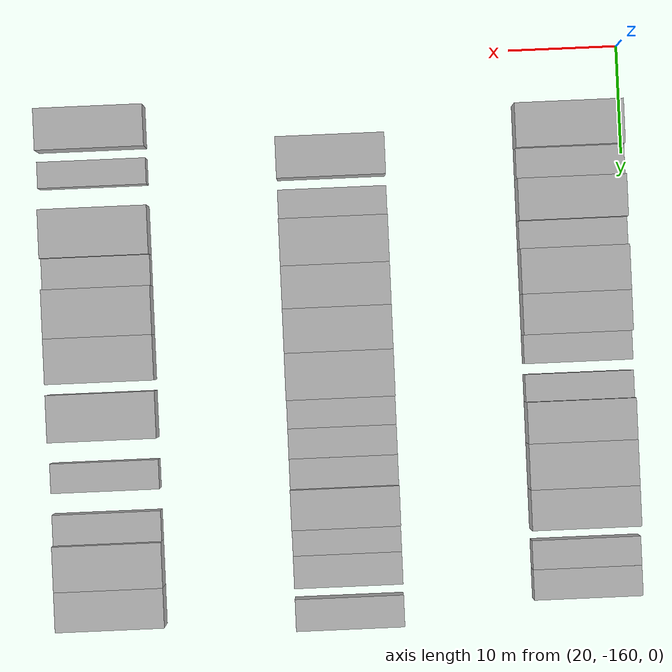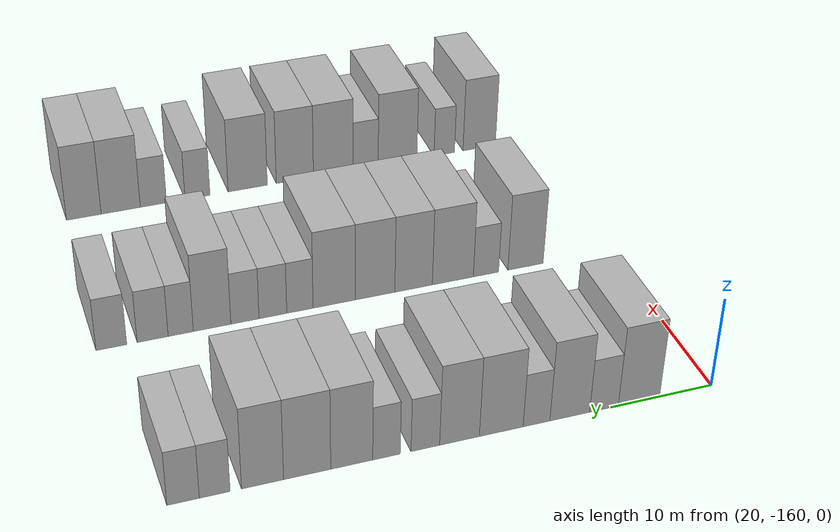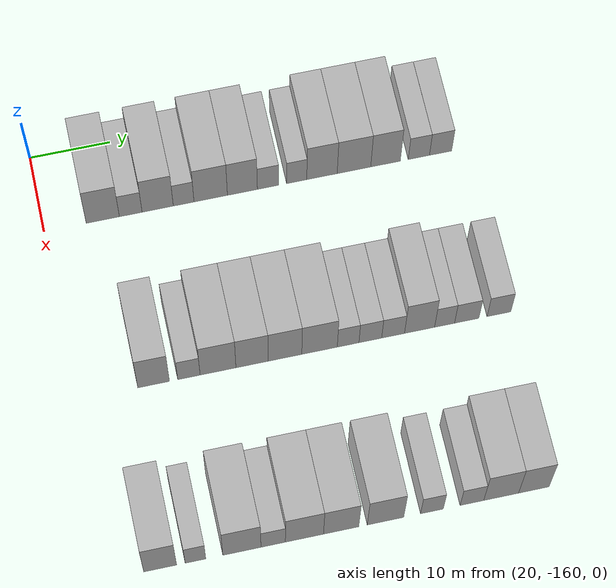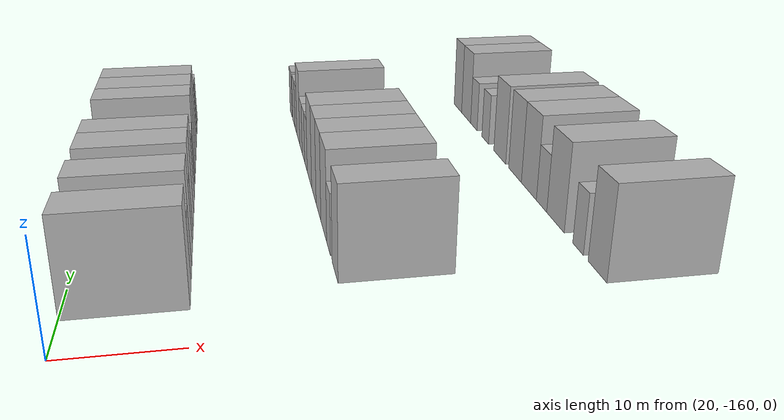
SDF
<sdf version="1.6">
 <world name="default">
  <model name="building_24">
   <static>1</static>
   <pose>25.0000 -152.7479 0 0.000000 0.000000 0.000000</pose>
   <link name="link">
    <pose>0 0 4.50 0 0 0</pose>
    <collision name="collision"><geometry><box><size>10.0000 4.0969 9.0000</size></box></geometry></collision>
    <visual name="visual">
     <cast_shadows>0</cast_shadows>
     <geometry><box><size>10.0000 4.0969 9.0000</size></box></geometry>
     <material>
      <script>
       <uri>model://HANNAS_wall/materials/scripts</uri>
       <uri>model://HANNAS_wall/materials/textures</uri>
       <name>vrc/HANNAS_wall</name>
      </script>
     </material>
    </visual>
   </link>
  </model>
  <model name="building_25">
   <static>1</static>
   <pose>25.0000 -149.2939 0 0.000000 0.000000 0.000000</pose>
   <link name="link">
    <pose>0 0 3.00 0 0 0</pose>
    <collision name="collision"><geometry><box><size>10.0000 2.8112 6.0000</size></box></geometry></collision>
    <visual name="visual">
     <cast_shadows>0</cast_shadows>
     <geometry><box><size>10.0000 2.8112 6.0000</size></box></geometry>
     <material>
      <script>
       <uri>model://HANNAS_wall/materials/scripts</uri>
       <uri>model://HANNAS_wall/materials/textures</uri>
       <name>vrc/HANNAS_wall</name>
      </script>
     </material>
    </visual>
   </link>
  </model>
  <model name="building_26">
   <static>1</static>
   <pose>25.0000 -145.9537 0 0.000000 0.000000 0.000000</pose>
   <link name="link">
    <pose>0 0 4.50 0 0 0</pose>
    <collision name="collision"><geometry><box><size>10.0000 3.8691 9.0000</size></box></geometry></collision>
    <visual name="visual">
     <cast_shadows>0</cast_shadows>
     <geometry><box><size>10.0000 3.8691 9.0000</size></box></geometry>
     <material>
      <script>
       <uri>model://HANNAS_wall/materials/scripts</uri>
       <uri>model://HANNAS_wall/materials/textures</uri>
       <name>vrc/HANNAS_wall</name>
      </script>
     </material>
    </visual>
   </link>
  </model>
  <model name="building_27">
   <static>1</static>
   <pose>25.0000 -142.7333 0 0.000000 0.000000 0.000000</pose>
   <link name="link">
    <pose>0 0 3.00 0 0 0</pose>
    <collision name="collision"><geometry><box><size>10.0000 2.5717 6.0000</size></box></geometry></collision>
    <visual name="visual">
     <cast_shadows>0</cast_shadows>
     <geometry><box><size>10.0000 2.5717 6.0000</size></box></geometry>
     <material>
      <script>
       <uri>model://HANNAS_wall/materials/scripts</uri>
       <uri>model://HANNAS_wall/materials/textures</uri>
       <name>vrc/HANNAS_wall</name>
      </script>
     </material>
    </visual>
   </link>
  </model>
  <model name="building_28">
   <static>1</static>
   <pose>25.0000 -139.3684 0 0.000000 0.000000 0.000000</pose>
   <link name="link">
    <pose>0 0 4.50 0 0 0</pose>
    <collision name="collision"><geometry><box><size>10.0000 4.1580 9.0000</size></box></geometry></collision>
    <visual name="visual">
     <cast_shadows>0</cast_shadows>
     <geometry><box><size>10.0000 4.1580 9.0000</size></box></geometry>
     <material>
      <script>
       <uri>model://HANNAS_wall/materials/scripts</uri>
       <uri>model://HANNAS_wall/materials/textures</uri>
       <name>vrc/HANNAS_wall</name>
      </script>
     </material>
    </visual>
   </link>
  </model>
  <model name="building_29">
   <static>1</static>
   <pose>25.0000 -135.4226 0 0.000000 0.000000 0.000000</pose>
   <link name="link">
    <pose>0 0 4.50 0 0 0</pose>
    <collision name="collision"><geometry><box><size>10.0000 3.7335 9.0000</size></box></geometry></collision>
    <visual name="visual">
     <cast_shadows>0</cast_shadows>
     <geometry><box><size>10.0000 3.7335 9.0000</size></box></geometry>
     <material>
      <script>
       <uri>model://HANNAS_wall/materials/scripts</uri>
       <uri>model://HANNAS_wall/materials/textures</uri>
       <name>vrc/HANNAS_wall</name>
      </script>
     </material>
    </visual>
   </link>
  </model>
  <model name="building_30">
   <static>1</static>
   <pose>25.0000 -132.2289 0 0.000000 0.000000 0.000000</pose>
   <link name="link">
    <pose>0 0 3.00 0 0 0</pose>
    <collision name="collision"><geometry><box><size>10.0000 2.6539 6.0000</size></box></geometry></collision>
    <visual name="visual">
     <cast_shadows>0</cast_shadows>
     <geometry><box><size>10.0000 2.6539 6.0000</size></box></geometry>
     <material>
      <script>
       <uri>model://HANNAS_wall/materials/scripts</uri>
       <uri>model://HANNAS_wall/materials/textures</uri>
       <name>vrc/HANNAS_wall</name>
      </script>
     </material>
    </visual>
   </link>
  </model>
  <model name="building_31">
   <static>1</static>
   <pose>25.0000 -128.6428 0 0.000000 0.000000 0.000000</pose>
   <link name="link">
    <pose>0 0 3.00 0 0 0</pose>
    <collision name="collision"><geometry><box><size>10.0000 2.5184 6.0000</size></box></geometry></collision>
    <visual name="visual">
     <cast_shadows>0</cast_shadows>
     <geometry><box><size>10.0000 2.5184 6.0000</size></box></geometry>
     <material>
      <script>
       <uri>model://HANNAS_wall/materials/scripts</uri>
       <uri>model://HANNAS_wall/materials/textures</uri>
       <name>vrc/HANNAS_wall</name>
      </script>
     </material>
    </visual>
   </link>
  </model>
  <model name="building_32">
   <static>1</static>
   <pose>25.0000 -125.4761 0 0.000000 0.000000 0.000000</pose>
   <link name="link">
    <pose>0 0 4.50 0 0 0</pose>
    <collision name="collision"><geometry><box><size>10.0000 3.8151 9.0000</size></box></geometry></collision>
    <visual name="visual">
     <cast_shadows>0</cast_shadows>
     <geometry><box><size>10.0000 3.8151 9.0000</size></box></geometry>
     <material>
      <script>
       <uri>model://HANNAS_wall/materials/scripts</uri>
       <uri>model://HANNAS_wall/materials/textures</uri>
       <name>vrc/HANNAS_wall</name>
      </script>
     </material>
    </visual>
   </link>
  </model>
  <model name="building_33">
   <static>1</static>
   <pose>25.0000 -121.4594 0 0.000000 0.000000 0.000000</pose>
   <link name="link">
    <pose>0 0 4.50 0 0 0</pose>
    <collision name="collision"><geometry><box><size>10.0000 4.2183 9.0000</size></box></geometry></collision>
    <visual name="visual">
     <cast_shadows>0</cast_shadows>
     <geometry><box><size>10.0000 4.2183 9.0000</size></box></geometry>
     <material>
      <script>
       <uri>model://HANNAS_wall/materials/scripts</uri>
       <uri>model://HANNAS_wall/materials/textures</uri>
       <name>vrc/HANNAS_wall</name>
      </script>
     </material>
    </visual>
   </link>
  </model>
  <model name="building_34">
   <static>1</static>
   <pose>25.0000 -117.4892 0 0.000000 0.000000 0.000000</pose>
   <link name="link">
    <pose>0 0 4.50 0 0 0</pose>
    <collision name="collision"><geometry><box><size>10.0000 3.7220 9.0000</size></box></geometry></collision>
    <visual name="visual">
     <cast_shadows>0</cast_shadows>
     <geometry><box><size>10.0000 3.7220 9.0000</size></box></geometry>
     <material>
      <script>
       <uri>model://HANNAS_wall/materials/scripts</uri>
       <uri>model://HANNAS_wall/materials/textures</uri>
       <name>vrc/HANNAS_wall</name>
      </script>
     </material>
    </visual>
   </link>
  </model>
  <model name="building_35">
   <static>1</static>
   <pose>25.0000 -113.2872 0 0.000000 0.000000 0.000000</pose>
   <link name="link">
    <pose>0 0 3.00 0 0 0</pose>
    <collision name="collision"><geometry><box><size>10.0000 2.6820 6.0000</size></box></geometry></collision>
    <visual name="visual">
     <cast_shadows>0</cast_shadows>
     <geometry><box><size>10.0000 2.6820 6.0000</size></box></geometry>
     <material>
      <script>
       <uri>model://HANNAS_wall/materials/scripts</uri>
       <uri>model://HANNAS_wall/materials/textures</uri>
       <name>vrc/HANNAS_wall</name>
      </script>
     </material>
    </visual>
   </link>
  </model>
  <model name="building_36">
   <static>1</static>
   <pose>25.0000 -110.5451 0 0.000000 0.000000 0.000000</pose>
   <link name="link">
    <pose>0 0 3.00 0 0 0</pose>
    <collision name="collision"><geometry><box><size>10.0000 2.8020 6.0000</size></box></geometry></collision>
    <visual name="visual">
     <cast_shadows>0</cast_shadows>
     <geometry><box><size>10.0000 2.8020 6.0000</size></box></geometry>
     <material>
      <script>
       <uri>model://HANNAS_wall/materials/scripts</uri>
       <uri>model://HANNAS_wall/materials/textures</uri>
       <name>vrc/HANNAS_wall</name>
      </script>
     </material>
    </visual>
   </link>
  </model>
  <model name="building_149">
   <static>1</static>
   <pose>47.0000 -150.7483 0 0.000000 0.000000 0.000000</pose>
   <link name="link">
    <pose>0 0 4.50 0 0 0</pose>
    <collision name="collision"><geometry><box><size>10.0000 3.8109 9.0000</size></box></geometry></collision>
    <visual name="visual">
     <cast_shadows>0</cast_shadows>
     <geometry><box><size>10.0000 3.8109 9.0000</size></box></geometry>
     <material>
      <script>
       <uri>model://HANNAS_wall/materials/scripts</uri>
       <uri>model://HANNAS_wall/materials/textures</uri>
       <name>vrc/HANNAS_wall</name>
      </script>
     </material>
    </visual>
   </link>
  </model>
  <model name="building_150">
   <static>1</static>
   <pose>47.0000 -146.4935 0 0.000000 0.000000 0.000000</pose>
   <link name="link">
    <pose>0 0 3.00 0 0 0</pose>
    <collision name="collision"><geometry><box><size>10.0000 2.6988 6.0000</size></box></geometry></collision>
    <visual name="visual">
     <cast_shadows>0</cast_shadows>
     <geometry><box><size>10.0000 2.6988 6.0000</size></box></geometry>
     <material>
      <script>
       <uri>model://HANNAS_wall/materials/scripts</uri>
       <uri>model://HANNAS_wall/materials/textures</uri>
       <name>vrc/HANNAS_wall</name>
      </script>
     </material>
    </visual>
   </link>
  </model>
  <model name="building_151">
   <static>1</static>
   <pose>47.0000 -142.9771 0 0.000000 0.000000 0.000000</pose>
   <link name="link">
    <pose>0 0 4.50 0 0 0</pose>
    <collision name="collision"><geometry><box><size>10.0000 4.3339 9.0000</size></box></geometry></collision>
    <visual name="visual">
     <cast_shadows>0</cast_shadows>
     <geometry><box><size>10.0000 4.3339 9.0000</size></box></geometry>
     <material>
      <script>
       <uri>model://HANNAS_wall/materials/scripts</uri>
       <uri>model://HANNAS_wall/materials/textures</uri>
       <name>vrc/HANNAS_wall</name>
      </script>
     </material>
    </visual>
   </link>
  </model>
  <model name="building_152">
   <static>1</static>
   <pose>47.0000 -138.8488 0 0.000000 0.000000 0.000000</pose>
   <link name="link">
    <pose>0 0 4.50 0 0 0</pose>
    <collision name="collision"><geometry><box><size>10.0000 3.9226 9.0000</size></box></geometry></collision>
    <visual name="visual">
     <cast_shadows>0</cast_shadows>
     <geometry><box><size>10.0000 3.9226 9.0000</size></box></geometry>
     <material>
      <script>
       <uri>model://HANNAS_wall/materials/scripts</uri>
       <uri>model://HANNAS_wall/materials/textures</uri>
       <name>vrc/HANNAS_wall</name>
      </script>
     </material>
    </visual>
   </link>
  </model>
  <model name="building_153">
   <static>1</static>
   <pose>47.0000 -134.8536 0 0.000000 0.000000 0.000000</pose>
   <link name="link">
    <pose>0 0 4.50 0 0 0</pose>
    <collision name="collision"><geometry><box><size>10.0000 4.0679 9.0000</size></box></geometry></collision>
    <visual name="visual">
     <cast_shadows>0</cast_shadows>
     <geometry><box><size>10.0000 4.0679 9.0000</size></box></geometry>
     <material>
      <script>
       <uri>model://HANNAS_wall/materials/scripts</uri>
       <uri>model://HANNAS_wall/materials/textures</uri>
       <name>vrc/HANNAS_wall</name>
      </script>
     </material>
    </visual>
   </link>
  </model>
  <model name="building_154">
   <static>1</static>
   <pose>47.0000 -130.6628 0 0.000000 0.000000 0.000000</pose>
   <link name="link">
    <pose>0 0 4.50 0 0 0</pose>
    <collision name="collision"><geometry><box><size>10.0000 4.3137 9.0000</size></box></geometry></collision>
    <visual name="visual">
     <cast_shadows>0</cast_shadows>
     <geometry><box><size>10.0000 4.3137 9.0000</size></box></geometry>
     <material>
      <script>
       <uri>model://HANNAS_wall/materials/scripts</uri>
       <uri>model://HANNAS_wall/materials/textures</uri>
       <name>vrc/HANNAS_wall</name>
      </script>
     </material>
    </visual>
   </link>
  </model>
  <model name="building_155">
   <static>1</static>
   <pose>47.0000 -127.1813 0 0.000000 0.000000 0.000000</pose>
   <link name="link">
    <pose>0 0 3.00 0 0 0</pose>
    <collision name="collision"><geometry><box><size>10.0000 2.6493 6.0000</size></box></geometry></collision>
    <visual name="visual">
     <cast_shadows>0</cast_shadows>
     <geometry><box><size>10.0000 2.6493 6.0000</size></box></geometry>
     <material>
      <script>
       <uri>model://HANNAS_wall/materials/scripts</uri>
       <uri>model://HANNAS_wall/materials/textures</uri>
       <name>vrc/HANNAS_wall</name>
      </script>
     </material>
    </visual>
   </link>
  </model>
  <model name="building_156">
   <static>1</static>
   <pose>47.0000 -124.4696 0 0.000000 0.000000 0.000000</pose>
   <link name="link">
    <pose>0 0 3.00 0 0 0</pose>
    <collision name="collision"><geometry><box><size>10.0000 2.7742 6.0000</size></box></geometry></collision>
    <visual name="visual">
     <cast_shadows>0</cast_shadows>
     <geometry><box><size>10.0000 2.7742 6.0000</size></box></geometry>
     <material>
      <script>
       <uri>model://HANNAS_wall/materials/scripts</uri>
       <uri>model://HANNAS_wall/materials/textures</uri>
       <name>vrc/HANNAS_wall</name>
      </script>
     </material>
    </visual>
   </link>
  </model>
  <model name="building_157">
   <static>1</static>
   <pose>47.0000 -121.6845 0 0.000000 0.000000 0.000000</pose>
   <link name="link">
    <pose>0 0 3.00 0 0 0</pose>
    <collision name="collision"><geometry><box><size>10.0000 2.7959 6.0000</size></box></geometry></collision>
    <visual name="visual">
     <cast_shadows>0</cast_shadows>
     <geometry><box><size>10.0000 2.7959 6.0000</size></box></geometry>
     <material>
      <script>
       <uri>model://HANNAS_wall/materials/scripts</uri>
       <uri>model://HANNAS_wall/materials/textures</uri>
       <name>vrc/HANNAS_wall</name>
      </script>
     </material>
    </visual>
   </link>
  </model>
  <model name="building_158">
   <static>1</static>
   <pose>47.0000 -118.4428 0 0.000000 0.000000 0.000000</pose>
   <link name="link">
    <pose>0 0 4.50 0 0 0</pose>
    <collision name="collision"><geometry><box><size>10.0000 3.6875 9.0000</size></box></geometry></collision>
    <visual name="visual">
     <cast_shadows>0</cast_shadows>
     <geometry><box><size>10.0000 3.6875 9.0000</size></box></geometry>
     <material>
      <script>
       <uri>model://HANNAS_wall/materials/scripts</uri>
       <uri>model://HANNAS_wall/materials/textures</uri>
       <name>vrc/HANNAS_wall</name>
      </script>
     </material>
    </visual>
   </link>
  </model>
  <model name="building_159">
   <static>1</static>
   <pose>47.0000 -115.3745 0 0.000000 0.000000 0.000000</pose>
   <link name="link">
    <pose>0 0 3.00 0 0 0</pose>
    <collision name="collision"><geometry><box><size>10.0000 2.4492 6.0000</size></box></geometry></collision>
    <visual name="visual">
     <cast_shadows>0</cast_shadows>
     <geometry><box><size>10.0000 2.4492 6.0000</size></box></geometry>
     <material>
      <script>
       <uri>model://HANNAS_wall/materials/scripts</uri>
       <uri>model://HANNAS_wall/materials/textures</uri>
       <name>vrc/HANNAS_wall</name>
      </script>
     </material>
    </visual>
   </link>
  </model>
  <model name="building_160">
   <static>1</static>
   <pose>47.0000 -112.6530 0 0.000000 0.000000 0.000000</pose>
   <link name="link">
    <pose>0 0 3.00 0 0 0</pose>
    <collision name="collision"><geometry><box><size>10.0000 2.9938 6.0000</size></box></geometry></collision>
    <visual name="visual">
     <cast_shadows>0</cast_shadows>
     <geometry><box><size>10.0000 2.9938 6.0000</size></box></geometry>
     <material>
      <script>
       <uri>model://HANNAS_wall/materials/scripts</uri>
       <uri>model://HANNAS_wall/materials/textures</uri>
       <name>vrc/HANNAS_wall</name>
      </script>
     </material>
    </visual>
   </link>
  </model>
  <model name="building_161">
   <static>1</static>
   <pose>47.0000 -108.6886 0 0.000000 0.000000 0.000000</pose>
   <link name="link">
    <pose>0 0 3.00 0 0 0</pose>
    <collision name="collision"><geometry><box><size>10.0000 2.9349 6.0000</size></box></geometry></collision>
    <visual name="visual">
     <cast_shadows>0</cast_shadows>
     <geometry><box><size>10.0000 2.9349 6.0000</size></box></geometry>
     <material>
      <script>
       <uri>model://HANNAS_wall/materials/scripts</uri>
       <uri>model://HANNAS_wall/materials/textures</uri>
       <name>vrc/HANNAS_wall</name>
      </script>
     </material>
    </visual>
   </link>
  </model>
  <model name="building_276">
   <static>1</static>
   <pose>69.0000 -154.2669 0 0.000000 0.000000 0.000000</pose>
   <link name="link">
    <pose>0 0 4.50 0 0 0</pose>
    <collision name="collision"><geometry><box><size>10.0000 3.8401 9.0000</size></box></geometry></collision>
    <visual name="visual">
     <cast_shadows>0</cast_shadows>
     <geometry><box><size>10.0000 3.8401 9.0000</size></box></geometry>
     <material>
      <script>
       <uri>model://HANNAS_wall/materials/scripts</uri>
       <uri>model://HANNAS_wall/materials/textures</uri>
       <name>vrc/HANNAS_wall</name>
      </script>
     </material>
    </visual>
   </link>
  </model>
  <model name="building_277">
   <static>1</static>
   <pose>69.0000 -150.1400 0 0.000000 0.000000 0.000000</pose>
   <link name="link">
    <pose>0 0 3.00 0 0 0</pose>
    <collision name="collision"><geometry><box><size>10.0000 2.4136 6.0000</size></box></geometry></collision>
    <visual name="visual">
     <cast_shadows>0</cast_shadows>
     <geometry><box><size>10.0000 2.4136 6.0000</size></box></geometry>
     <material>
      <script>
       <uri>model://HANNAS_wall/materials/scripts</uri>
       <uri>model://HANNAS_wall/materials/textures</uri>
       <name>vrc/HANNAS_wall</name>
      </script>
     </material>
    </visual>
   </link>
  </model>
  <model name="building_278">
   <static>1</static>
   <pose>69.0000 -144.6911 0 0.000000 0.000000 0.000000</pose>
   <link name="link">
    <pose>0 0 4.50 0 0 0</pose>
    <collision name="collision"><geometry><box><size>10.0000 4.4843 9.0000</size></box></geometry></collision>
    <visual name="visual">
     <cast_shadows>0</cast_shadows>
     <geometry><box><size>10.0000 4.4843 9.0000</size></box></geometry>
     <material>
      <script>
       <uri>model://HANNAS_wall/materials/scripts</uri>
       <uri>model://HANNAS_wall/materials/textures</uri>
       <name>vrc/HANNAS_wall</name>
      </script>
     </material>
    </visual>
   </link>
  </model>
  <model name="building_279">
   <static>1</static>
   <pose>69.0000 -141.0136 0 0.000000 0.000000 0.000000</pose>
   <link name="link">
    <pose>0 0 3.00 0 0 0</pose>
    <collision name="collision"><geometry><box><size>10.0000 2.8707 6.0000</size></box></geometry></collision>
    <visual name="visual">
     <cast_shadows>0</cast_shadows>
     <geometry><box><size>10.0000 2.8707 6.0000</size></box></geometry>
     <material>
      <script>
       <uri>model://HANNAS_wall/materials/scripts</uri>
       <uri>model://HANNAS_wall/materials/textures</uri>
       <name>vrc/HANNAS_wall</name>
      </script>
     </material>
    </visual>
   </link>
  </model>
  <model name="building_280">
   <static>1</static>
   <pose>69.0000 -137.3296 0 0.000000 0.000000 0.000000</pose>
   <link name="link">
    <pose>0 0 4.50 0 0 0</pose>
    <collision name="collision"><geometry><box><size>10.0000 4.4974 9.0000</size></box></geometry></collision>
    <visual name="visual">
     <cast_shadows>0</cast_shadows>
     <geometry><box><size>10.0000 4.4974 9.0000</size></box></geometry>
     <material>
      <script>
       <uri>model://HANNAS_wall/materials/scripts</uri>
       <uri>model://HANNAS_wall/materials/textures</uri>
       <name>vrc/HANNAS_wall</name>
      </script>
     </material>
    </visual>
   </link>
  </model>
  <model name="building_281">
   <static>1</static>
   <pose>69.0000 -132.9925 0 0.000000 0.000000 0.000000</pose>
   <link name="link">
    <pose>0 0 4.50 0 0 0</pose>
    <collision name="collision"><geometry><box><size>10.0000 4.1769 9.0000</size></box></geometry></collision>
    <visual name="visual">
     <cast_shadows>0</cast_shadows>
     <geometry><box><size>10.0000 4.1769 9.0000</size></box></geometry>
     <material>
      <script>
       <uri>model://HANNAS_wall/materials/scripts</uri>
       <uri>model://HANNAS_wall/materials/textures</uri>
       <name>vrc/HANNAS_wall</name>
      </script>
     </material>
    </visual>
   </link>
  </model>
  <model name="building_282">
   <static>1</static>
   <pose>69.0000 -127.7389 0 0.000000 0.000000 0.000000</pose>
   <link name="link">
    <pose>0 0 4.50 0 0 0</pose>
    <collision name="collision"><geometry><box><size>10.0000 4.3303 9.0000</size></box></geometry></collision>
    <visual name="visual">
     <cast_shadows>0</cast_shadows>
     <geometry><box><size>10.0000 4.3303 9.0000</size></box></geometry>
     <material>
      <script>
       <uri>model://HANNAS_wall/materials/scripts</uri>
       <uri>model://HANNAS_wall/materials/textures</uri>
       <name>vrc/HANNAS_wall</name>
      </script>
     </material>
    </visual>
   </link>
  </model>
  <model name="building_283">
   <static>1</static>
   <pose>69.0000 -122.2175 0 0.000000 0.000000 0.000000</pose>
   <link name="link">
    <pose>0 0 3.00 0 0 0</pose>
    <collision name="collision"><geometry><box><size>10.0000 2.7126 6.0000</size></box></geometry></collision>
    <visual name="visual">
     <cast_shadows>0</cast_shadows>
     <geometry><box><size>10.0000 2.7126 6.0000</size></box></geometry>
     <material>
      <script>
       <uri>model://HANNAS_wall/materials/scripts</uri>
       <uri>model://HANNAS_wall/materials/textures</uri>
       <name>vrc/HANNAS_wall</name>
      </script>
     </material>
    </visual>
   </link>
  </model>
  <model name="building_284">
   <static>1</static>
   <pose>69.0000 -117.4512 0 0.000000 0.000000 0.000000</pose>
   <link name="link">
    <pose>0 0 3.00 0 0 0</pose>
    <collision name="collision"><geometry><box><size>10.0000 2.8199 6.0000</size></box></geometry></collision>
    <visual name="visual">
     <cast_shadows>0</cast_shadows>
     <geometry><box><size>10.0000 2.8199 6.0000</size></box></geometry>
     <material>
      <script>
       <uri>model://HANNAS_wall/materials/scripts</uri>
       <uri>model://HANNAS_wall/materials/textures</uri>
       <name>vrc/HANNAS_wall</name>
      </script>
     </material>
    </visual>
   </link>
  </model>
  <model name="building_285">
   <static>1</static>
   <pose>69.0000 -113.9555 0 0.000000 0.000000 0.000000</pose>
   <link name="link">
    <pose>0 0 4.50 0 0 0</pose>
    <collision name="collision"><geometry><box><size>10.0000 4.1716 9.0000</size></box></geometry></collision>
    <visual name="visual">
     <cast_shadows>0</cast_shadows>
     <geometry><box><size>10.0000 4.1716 9.0000</size></box></geometry>
     <material>
      <script>
       <uri>model://HANNAS_wall/materials/scripts</uri>
       <uri>model://HANNAS_wall/materials/textures</uri>
       <name>vrc/HANNAS_wall</name>
      </script>
     </material>
    </visual>
   </link>
  </model>
  <model name="building_286">
   <static>1</static>
   <pose>69.0000 -110.0388 0 0.000000 0.000000 0.000000</pose>
   <link name="link">
    <pose>0 0 4.50 0 0 0</pose>
    <collision name="collision"><geometry><box><size>10.0000 3.6617 9.0000</size></box></geometry></collision>
    <visual name="visual">
     <cast_shadows>0</cast_shadows>
     <geometry><box><size>10.0000 3.6617 9.0000</size></box></geometry>
     <material>
      <script>
       <uri>model://HANNAS_wall/materials/scripts</uri>
       <uri>model://HANNAS_wall/materials/textures</uri>
       <name>vrc/HANNAS_wall</name>
      </script>
     </material>
    </visual>
   </link>
  </model>
 </world>
</sdf>
